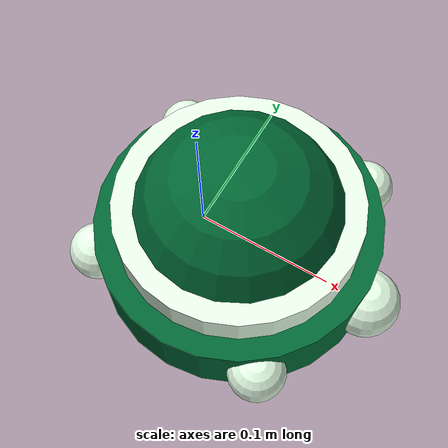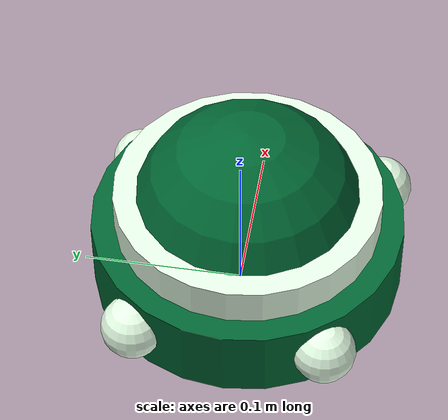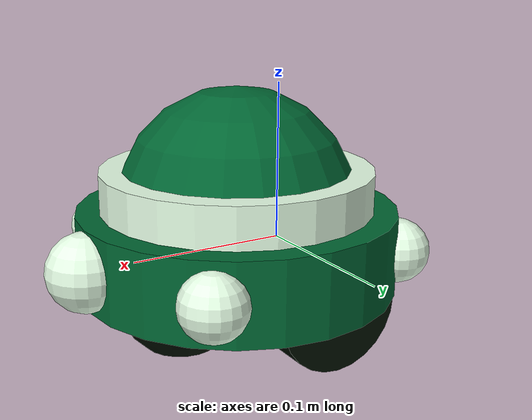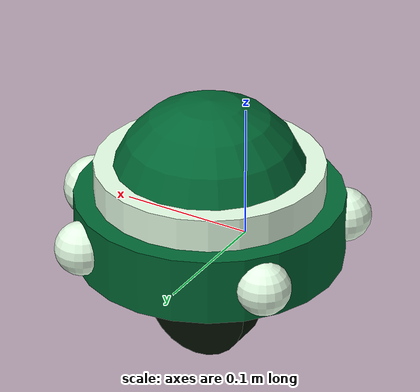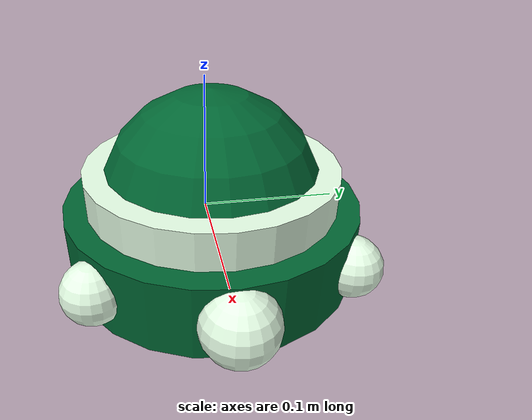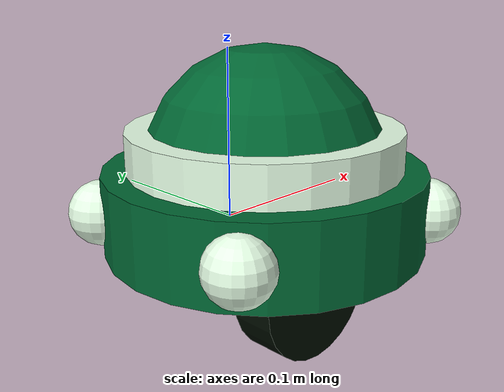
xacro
<?xml version="1.0" ?>
<robot name='robot' xmlns:xacro="http://ros.org/wiki/xacro">

	<!-- Свойства объектов -->

	<!-- Размеры -->

	<xacro:property name="base_radius" value="0.1" />
	<xacro:property name="base_height" value="0.05" />
	<xacro:property name="base_weight" value="5" />

	<xacro:property name="midbase_radius" value="0.085" />
	<xacro:property name="midbase_height" value="0.025" />

	<xacro:property name="upbase_radius" value="0.075" />

	<xacro:property name="head_radius" value="0.024" />

	<xacro:property name="limb_radius" value="0.02" />
	<xacro:property name="limb_close_off" value="0.06" />
	<xacro:property name="limb_far_off" value="0.08" />

	<xacro:property name="drive_radius" value="0.04" />
	<xacro:property name="drive_height" value="0.025" />
	<xacro:property name="drive_x_off" value="-0.03" />
	<xacro:property name="drive_y_off" value="0.058" />
	<xacro:property name="drive_z_off" value="${-(base_height/2)}" />

	<xacro:property name="driven_radius" value="0.04" />
	<xacro:property name="driven_x_off" value="0.04" />
	<xacro:property name="driven_z_off" value="${-(base_height/2)}" />

	<xacro:include filename="$(find robot_description)/urdf/diff_drive.urdf.xacro" />
	<xacro:include filename="$(find robot_description)/urdf/lidar.urdf.xacro" />
	<xacro:include filename="$(find robot_description)/urdf/depth_camera.urdf.xacro" />
	<xacro:include filename="$(find robot_description)/urdf/imu.urdf.xacro" />

	<!-- Цвета -->

	<material name="green">
		<color rgba="0 0.4 0.2 1"/>
	</material>
	<material name="dark_green">
		<color rgba="0 0.05 0 1"/>
	</material>
	<material name="light_green">
		<color rgba="0.9 1.0 0.9 1"/>
	</material>

	<!-- Joint'ы -->

	<xacro:macro name="joint" params="parent child type xyz rpy">
		<joint name="${parent}_${child}_joint" type="${type}">
			<parent link="${parent}_link"/>
			<child link="${child}_link"/>
			<origin xyz="${xyz}" rpy="${rpy}"/>
		</joint>
	</xacro:macro>

	<xacro:macro name="drive_joint" params="parent child type xyz rpy axis">
		<joint name="${parent}_${child}_joint" type="${type}">
			<parent link="${parent}_link"/>
			<child link="${child}_link"/>
			<origin xyz="${xyz}" rpy="${rpy}"/>
			<axis xyz="${axis}"/>
		</joint>
	</xacro:macro>

	<!-- Link'и -->

	<xacro:macro name="cylinder_link" params="name radius length color mass">
		<link name="${name}_link">
			<visual>
				<geometry>
					<cylinder radius="${radius}" length="${length}"/>
				</geometry>
				<material name="${color}"/>
			</visual>
			<collision>
				<geometry>
					<cylinder radius="${radius}" length="${length}"/>
				</geometry>
			</collision>
			<inertial>
				<mass value="${mass}"/>
				<inertia ixx="${(mass/12)*((3*radius*radius)+(length*length))}"
								 ixy="0"
								 ixz="0"
								 iyy="${(mass/12)*((3*radius*radius)+(length*length))}"
								 iyz="0"
								 izz="${(mass/2)*(radius*radius)}"/>
			</inertial>
		</link>
	</xacro:macro>

	<xacro:macro name="sphere_link" params="name radius color mass">
		<link name="${name}_link">
			<visual>
				<geometry>
					<sphere radius="${radius}"/>
				</geometry>
				<material name="${color}"/>
			</visual>
			<collision>
				<geometry>
					<sphere radius="${radius}"/>
				</geometry>
			</collision>
			<inertial>
				<mass value="${mass}"/>
				<inertia ixx="${(2/5)*mass*(radius*radius)}"
								 ixy="0"
								 ixz="0"
								 iyy="${(2/5)*mass*(radius*radius)}"
								 iyz="0"
								 izz="${(2/5)*mass*(radius*radius)}"/>
			</inertial>
		</link>
	</xacro:macro>

	<!-- Объекты -->

	<!-- База -->

	<link name="base_link">
		<visual>
			<geometry>
				<cylinder radius="${base_radius}" length="${base_height}"/>
			</geometry>
			<material name="green"/>
			<origin xyz="0.03 0 0" rpy="0 0 0"/>
		</visual>
		<collision>
			<geometry>
				<cylinder radius="${base_radius}" length="${base_height}"/>
			</geometry>
			<origin xyz="0.03 0 0" rpy="0 0 0"/>
		</collision>
		<inertial>
			<mass value="${base_weight}"/>
			<inertia ixx="${(base_weight/12)*((3*base_radius*base_radius)+(base_height*base_height))}"
							 ixy="0"
							 ixz="0"
							 iyy="${(base_weight/12)*((3*base_radius*base_radius)+(base_height*base_height))}"
							 iyz="0"
							 izz="${(base_weight/2)*(base_radius*base_radius)}"/>
			<origin xyz="0.03 0 0" rpy="0 0 0"/>
		</inertial>
	</link>

	<!-- След от базы и связка с базой -->

	<link name="base_footprint_link"/>

	<xacro:joint parent="base" child="base_footprint"
							 type="fixed"
							 xyz="0.03 0 ${-((base_height/2)+driven_radius)}" rpy="0 0 0" />

	<!-- Межбаза и связка с базой -->

	<xacro:cylinder_link name="midbase"
											 radius="0.085" length="0.025"
											 color="light_green"
											 mass="3" />

	<xacro:joint parent="base" child="midbase"
							 type="fixed"
							 xyz="0.03 0 ${(base_height+midbase_height)/2}" rpy="0 0 0" />

	<!-- Надбаза и связка с базой -->

	<xacro:sphere_link name="upbase"
					  				 radius="${upbase_radius}"
					  				 color="green"
					  				 mass="3" />

	<xacro:joint parent="base" child="upbase"
							 type="fixed"
							 xyz="0.03 0 ${base_height/2}" rpy="0 0 0" />

	<!-- Голова базы и связка с базой -->

	<link name="head_link">
		<visual>
			<geometry>
				<sphere radius="${head_radius}"/>
			</geometry>
			<material name="light_green"/>
		</visual>
		<collision>
			<geometry>
				<sphere radius="${head_radius}"/>
			</geometry>
		</collision>
		<inertial>
			<mass value="0.5"/>
			<inertia ixx="${(2/5)*0.5*(head_radius*head_radius)}"
							 ixy="0"
							 ixz="0"
							 iyy="${(2/5)*0.5*(head_radius*head_radius)}"
							 iyz="0"
							 izz="${(2/5)*0.5*(head_radius*head_radius)}"/>
		</inertial>
	</link>

	<xacro:joint parent="base" child="head"
							 type="fixed"
							 xyz="${base_radius+0.03} 0 0" rpy="0 0 0" />

	<!-- Лапки базы и связки -->

	<xacro:sphere_link name="right_hand"
					  				 radius="${limb_radius}"
					  				 color="light_green"
					  				 mass="0.25" />
	<xacro:sphere_link name="left_hand"
					  				 radius="${limb_radius}"
					  				 color="light_green"
					  				 mass="0.25" />
	<xacro:sphere_link name="right_leg"
					  				 radius="${limb_radius}"
					  				 color="light_green"
					  				 mass="0.25" />
	<xacro:sphere_link name="left_leg"
					  				 radius="${limb_radius}"
					  				 color="light_green"
					  				 mass="0.25" />

	<xacro:joint parent="base" child="right_hand"
							 type="fixed"
							 xyz="${limb_close_off+0.03} ${-limb_far_off} 0" rpy="0 0 0" />
	<xacro:joint parent="base" child="left_hand"
							 type="fixed"
							 xyz="${limb_close_off+0.03} ${limb_far_off} 0" rpy="0 0 0" />
	<xacro:joint parent="base" child="right_leg"
							 type="fixed"
							 xyz="${-limb_far_off+0.03} ${-limb_close_off} 0" rpy="0 0 0" />
	<xacro:joint parent="base" child="left_leg"
							 type="fixed"
							 xyz="${-limb_far_off+0.03} ${limb_close_off} 0" rpy="0 0 0" />

	<!-- Ведущие колеса и связки с базой -->

	<xacro:cylinder_link name="right_drive"
											 radius="0.04" length="0.025"
											 color="dark_green"
											 mass="1" />
	<xacro:cylinder_link name="left_drive"
											 radius="0.04" length="0.025"
											 color="dark_green"
											 mass="1" />

	<xacro:drive_joint parent="base" child="right_drive"
					  				 type="continuous"
					  				 xyz="${drive_x_off+0.03} ${-drive_y_off} ${drive_z_off}" rpy="${pi/2} 0 0"
					  				 axis="0 0 -1" />
	<xacro:drive_joint parent="base" child="left_drive"
					  				 type="continuous"
					  				 xyz="${drive_x_off+0.03} ${drive_y_off} ${drive_z_off}" rpy="${pi/2} 0 0"
					  				 axis="0 0 -1" />

	<!-- Ведомое колесо и связка с базой -->

	<xacro:sphere_link name="driven"
					  				 radius="${driven_radius}"
					  				 color="dark_green"
					  				 mass="2" />

	<xacro:joint parent="base" child="driven"
							 type="fixed"
							 xyz="${driven_x_off+0.03} 0 ${-(base_height/2)}" rpy="0 0 0" />

	<gazebo reference="driven_link">
  	<mu1 value="0.001"/>
    <mu2 value="0.001"/>
  </gazebo>

</robot>
